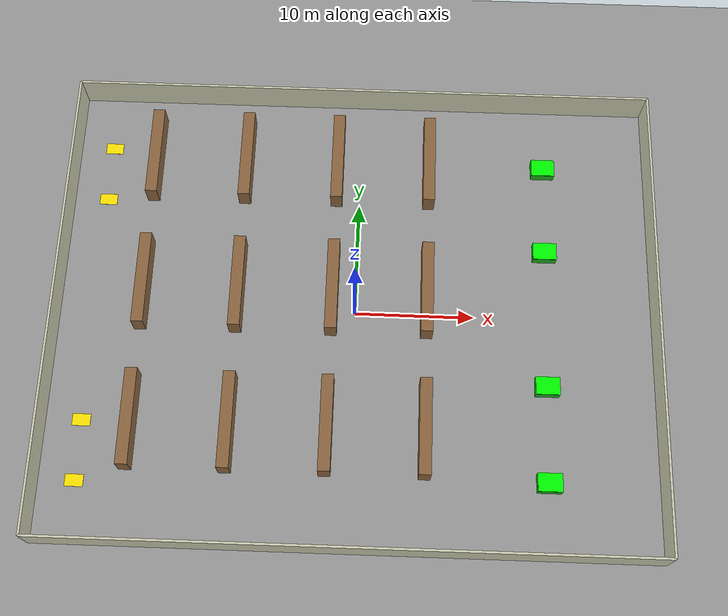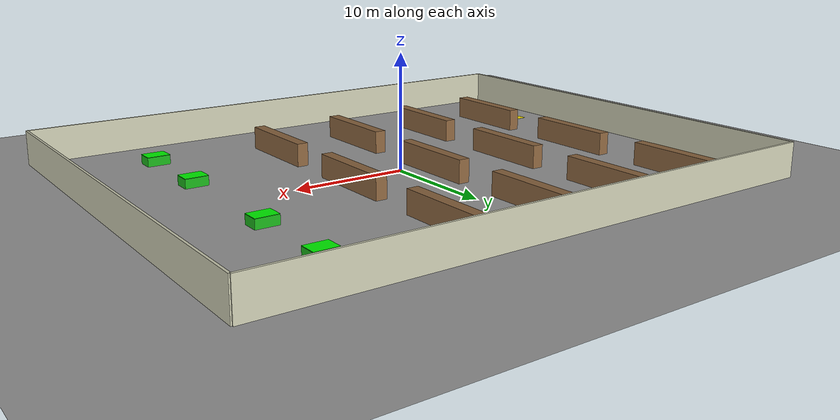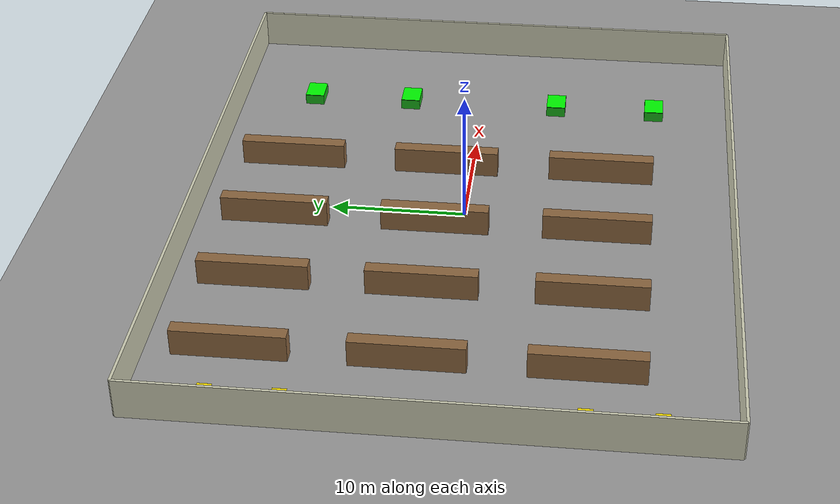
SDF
<?xml version="1.0" ?>
<sdf version="1.10">
  <world name="warehouse">

    <!-- Physics -->
    <physics name="4ms" type="ignored">
      <max_step_size>0.004</max_step_size>
      <real_time_factor>1.0</real_time_factor>
    </physics>

    <!-- Required plugins -->
    <plugin filename="gz-sim-physics-system" name="gz::sim::systems::Physics"/>
    <plugin filename="gz-sim-user-commands-system" name="gz::sim::systems::UserCommands"/>
    <plugin filename="gz-sim-scene-broadcaster-system" name="gz::sim::systems::SceneBroadcaster"/>
    <plugin filename="gz-sim-sensors-system" name="gz::sim::systems::Sensors">
      <render_engine>ogre2</render_engine>
    </plugin>
    <plugin filename="gz-sim-imu-system" name="gz::sim::systems::Imu"/>
    <plugin filename="gz-sim-contact-system" name="gz::sim::systems::Contact"/>

    <!-- Lighting -->
    <light name="sun" type="directional">
      <cast_shadows>true</cast_shadows>
      <pose>0 0 10 0 0 0</pose>
      <diffuse>0.8 0.8 0.8 1</diffuse>
      <specular>0.2 0.2 0.2 1</specular>
      <attenuation>
        <range>1000</range>
        <constant>0.9</constant>
        <linear>0.01</linear>
        <quadratic>0.001</quadratic>
      </attenuation>
      <direction>-0.5 0.1 -0.9</direction>
    </light>

    <!-- Ground plane -->
    <model name="ground_plane">
      <static>true</static>
      <link name="link">
        <collision name="collision">
          <geometry>
            <plane>
              <normal>0 0 1</normal>
              <size>50 40</size>
            </plane>
          </geometry>
        </collision>
        <visual name="visual">
          <geometry>
            <plane>
              <normal>0 0 1</normal>
              <size>50 40</size>
            </plane>
          </geometry>
          <material>
            <ambient>0.6 0.6 0.6 1</ambient>
            <diffuse>0.6 0.6 0.6 1</diffuse>
          </material>
        </visual>
      </link>
    </model>

    <!-- ===== WAREHOUSE OUTER WALLS ===== -->
    <!-- North wall -->
    <model name="wall_north">
      <static>true</static>
      <pose>0 20 1.5 0 0 0</pose>
      <link name="link">
        <collision name="collision">
          <geometry><box><size>50 0.2 3</size></box></geometry>
        </collision>
        <visual name="visual">
          <geometry><box><size>50 0.2 3</size></box></geometry>
          <material><ambient>0.8 0.8 0.7 1</ambient><diffuse>0.8 0.8 0.7 1</diffuse></material>
        </visual>
      </link>
    </model>

    <!-- South wall -->
    <model name="wall_south">
      <static>true</static>
      <pose>0 -20 1.5 0 0 0</pose>
      <link name="link">
        <collision name="collision">
          <geometry><box><size>50 0.2 3</size></box></geometry>
        </collision>
        <visual name="visual">
          <geometry><box><size>50 0.2 3</size></box></geometry>
          <material><ambient>0.8 0.8 0.7 1</ambient><diffuse>0.8 0.8 0.7 1</diffuse></material>
        </visual>
      </link>
    </model>

    <!-- East wall -->
    <model name="wall_east">
      <static>true</static>
      <pose>25 0 1.5 0 0 0</pose>
      <link name="link">
        <collision name="collision">
          <geometry><box><size>0.2 40 3</size></box></geometry>
        </collision>
        <visual name="visual">
          <geometry><box><size>0.2 40 3</size></box></geometry>
          <material><ambient>0.8 0.8 0.7 1</ambient><diffuse>0.8 0.8 0.7 1</diffuse></material>
        </visual>
      </link>
    </model>

    <!-- West wall -->
    <model name="wall_west">
      <static>true</static>
      <pose>-25 0 1.5 0 0 0</pose>
      <link name="link">
        <collision name="collision">
          <geometry><box><size>0.2 40 3</size></box></geometry>
        </collision>
        <visual name="visual">
          <geometry><box><size>0.2 40 3</size></box></geometry>
          <material><ambient>0.8 0.8 0.7 1</ambient><diffuse>0.8 0.8 0.7 1</diffuse></material>
        </visual>
      </link>
    </model>

    <!-- ===== SHELVING AISLES ===== -->
    <!-- Aisle A: x = -18, two rows of shelves, y = -15..15 -->
    <model name="shelf_A1">
      <static>true</static>
      <pose>-18 -10 1.0 0 0 0</pose>
      <link name="link">
        <collision name="collision">
          <geometry><box><size>1.0 8.0 2.0</size></box></geometry>
        </collision>
        <visual name="visual">
          <geometry><box><size>1.0 8.0 2.0</size></box></geometry>
          <material><ambient>0.4 0.3 0.2 1</ambient><diffuse>0.55 0.4 0.25 1</diffuse></material>
        </visual>
      </link>
    </model>

    <model name="shelf_A2">
      <static>true</static>
      <pose>-18 2 1.0 0 0 0</pose>
      <link name="link">
        <collision name="collision">
          <geometry><box><size>1.0 8.0 2.0</size></box></geometry>
        </collision>
        <visual name="visual">
          <geometry><box><size>1.0 8.0 2.0</size></box></geometry>
          <material><ambient>0.4 0.3 0.2 1</ambient><diffuse>0.55 0.4 0.25 1</diffuse></material>
        </visual>
      </link>
    </model>

    <model name="shelf_A3">
      <static>true</static>
      <pose>-18 14 1.0 0 0 0</pose>
      <link name="link">
        <collision name="collision">
          <geometry><box><size>1.0 8.0 2.0</size></box></geometry>
        </collision>
        <visual name="visual">
          <geometry><box><size>1.0 8.0 2.0</size></box></geometry>
          <material><ambient>0.4 0.3 0.2 1</ambient><diffuse>0.55 0.4 0.25 1</diffuse></material>
        </visual>
      </link>
    </model>

    <!-- Aisle B: x = -10 -->
    <model name="shelf_B1">
      <static>true</static>
      <pose>-10 -10 1.0 0 0 0</pose>
      <link name="link">
        <collision name="collision">
          <geometry><box><size>1.0 8.0 2.0</size></box></geometry>
        </collision>
        <visual name="visual">
          <geometry><box><size>1.0 8.0 2.0</size></box></geometry>
          <material><ambient>0.4 0.3 0.2 1</ambient><diffuse>0.55 0.4 0.25 1</diffuse></material>
        </visual>
      </link>
    </model>

    <model name="shelf_B2">
      <static>true</static>
      <pose>-10 2 1.0 0 0 0</pose>
      <link name="link">
        <collision name="collision">
          <geometry><box><size>1.0 8.0 2.0</size></box></geometry>
        </collision>
        <visual name="visual">
          <geometry><box><size>1.0 8.0 2.0</size></box></geometry>
          <material><ambient>0.4 0.3 0.2 1</ambient><diffuse>0.55 0.4 0.25 1</diffuse></material>
        </visual>
      </link>
    </model>

    <model name="shelf_B3">
      <static>true</static>
      <pose>-10 14 1.0 0 0 0</pose>
      <link name="link">
        <collision name="collision">
          <geometry><box><size>1.0 8.0 2.0</size></box></geometry>
        </collision>
        <visual name="visual">
          <geometry><box><size>1.0 8.0 2.0</size></box></geometry>
          <material><ambient>0.4 0.3 0.2 1</ambient><diffuse>0.55 0.4 0.25 1</diffuse></material>
        </visual>
      </link>
    </model>

    <!-- Aisle C: x = -2 -->
    <model name="shelf_C1">
      <static>true</static>
      <pose>-2 -10 1.0 0 0 0</pose>
      <link name="link">
        <collision name="collision">
          <geometry><box><size>1.0 8.0 2.0</size></box></geometry>
        </collision>
        <visual name="visual">
          <geometry><box><size>1.0 8.0 2.0</size></box></geometry>
          <material><ambient>0.4 0.3 0.2 1</ambient><diffuse>0.55 0.4 0.25 1</diffuse></material>
        </visual>
      </link>
    </model>

    <model name="shelf_C2">
      <static>true</static>
      <pose>-2 2 1.0 0 0 0</pose>
      <link name="link">
        <collision name="collision">
          <geometry><box><size>1.0 8.0 2.0</size></box></geometry>
        </collision>
        <visual name="visual">
          <geometry><box><size>1.0 8.0 2.0</size></box></geometry>
          <material><ambient>0.4 0.3 0.2 1</ambient><diffuse>0.55 0.4 0.25 1</diffuse></material>
        </visual>
      </link>
    </model>

    <model name="shelf_C3">
      <static>true</static>
      <pose>-2 14 1.0 0 0 0</pose>
      <link name="link">
        <collision name="collision">
          <geometry><box><size>1.0 8.0 2.0</size></box></geometry>
        </collision>
        <visual name="visual">
          <geometry><box><size>1.0 8.0 2.0</size></box></geometry>
          <material><ambient>0.4 0.3 0.2 1</ambient><diffuse>0.55 0.4 0.25 1</diffuse></material>
        </visual>
      </link>
    </model>

    <!-- Aisle D: x = 6 -->
    <model name="shelf_D1">
      <static>true</static>
      <pose>6 -10 1.0 0 0 0</pose>
      <link name="link">
        <collision name="collision">
          <geometry><box><size>1.0 8.0 2.0</size></box></geometry>
        </collision>
        <visual name="visual">
          <geometry><box><size>1.0 8.0 2.0</size></box></geometry>
          <material><ambient>0.4 0.3 0.2 1</ambient><diffuse>0.55 0.4 0.25 1</diffuse></material>
        </visual>
      </link>
    </model>

    <model name="shelf_D2">
      <static>true</static>
      <pose>6 2 1.0 0 0 0</pose>
      <link name="link">
        <collision name="collision">
          <geometry><box><size>1.0 8.0 2.0</size></box></geometry>
        </collision>
        <visual name="visual">
          <geometry><box><size>1.0 8.0 2.0</size></box></geometry>
          <material><ambient>0.4 0.3 0.2 1</ambient><diffuse>0.55 0.4 0.25 1</diffuse></material>
        </visual>
      </link>
    </model>

    <model name="shelf_D3">
      <static>true</static>
      <pose>6 14 1.0 0 0 0</pose>
      <link name="link">
        <collision name="collision">
          <geometry><box><size>1.0 8.0 2.0</size></box></geometry>
        </collision>
        <visual name="visual">
          <geometry><box><size>1.0 8.0 2.0</size></box></geometry>
          <material><ambient>0.4 0.3 0.2 1</ambient><diffuse>0.55 0.4 0.25 1</diffuse></material>
        </visual>
      </link>
    </model>

    <!-- ===== PICK STATIONS (east side, x=16) ===== -->
    <!-- Pick Station 1 -->
    <model name="pick_station_1">
      <static>true</static>
      <pose>16 14 0.4 0 0 0</pose>
      <link name="link">
        <collision name="collision">
          <geometry><box><size>2.0 1.5 0.8</size></box></geometry>
        </collision>
        <visual name="visual">
          <geometry><box><size>2.0 1.5 0.8</size></box></geometry>
          <material><ambient>0.1 0.6 0.1 1</ambient><diffuse>0.1 0.7 0.1 1</diffuse></material>
        </visual>
      </link>
    </model>
    <model name="pick_station_1_marker">
      <static>true</static>
      <pose>16 14 0.82 0 0 0</pose>
      <link name="link">
        <visual name="visual">
          <geometry><box><size>2.0 1.5 0.04</size></box></geometry>
          <material><ambient>0.0 1.0 0.0 1</ambient><diffuse>0.0 1.0 0.0 1</diffuse></material>
        </visual>
      </link>
    </model>

    <!-- Pick Station 2 -->
    <model name="pick_station_2">
      <static>true</static>
      <pose>16 6 0.4 0 0 0</pose>
      <link name="link">
        <collision name="collision">
          <geometry><box><size>2.0 1.5 0.8</size></box></geometry>
        </collision>
        <visual name="visual">
          <geometry><box><size>2.0 1.5 0.8</size></box></geometry>
          <material><ambient>0.1 0.6 0.1 1</ambient><diffuse>0.1 0.7 0.1 1</diffuse></material>
        </visual>
      </link>
    </model>
    <model name="pick_station_2_marker">
      <static>true</static>
      <pose>16 6 0.82 0 0 0</pose>
      <link name="link">
        <visual name="visual">
          <geometry><box><size>2.0 1.5 0.04</size></box></geometry>
          <material><ambient>0.0 1.0 0.0 1</ambient><diffuse>0.0 1.0 0.0 1</diffuse></material>
        </visual>
      </link>
    </model>

    <!-- Pick Station 3 -->
    <model name="pick_station_3">
      <static>true</static>
      <pose>16 -6 0.4 0 0 0</pose>
      <link name="link">
        <collision name="collision">
          <geometry><box><size>2.0 1.5 0.8</size></box></geometry>
        </collision>
        <visual name="visual">
          <geometry><box><size>2.0 1.5 0.8</size></box></geometry>
          <material><ambient>0.1 0.6 0.1 1</ambient><diffuse>0.1 0.7 0.1 1</diffuse></material>
        </visual>
      </link>
    </model>
    <model name="pick_station_3_marker">
      <static>true</static>
      <pose>16 -6 0.82 0 0 0</pose>
      <link name="link">
        <visual name="visual">
          <geometry><box><size>2.0 1.5 0.04</size></box></geometry>
          <material><ambient>0.0 1.0 0.0 1</ambient><diffuse>0.0 1.0 0.0 1</diffuse></material>
        </visual>
      </link>
    </model>

    <!-- Pick Station 4 -->
    <model name="pick_station_4">
      <static>true</static>
      <pose>16 -14 0.4 0 0 0</pose>
      <link name="link">
        <collision name="collision">
          <geometry><box><size>2.0 1.5 0.8</size></box></geometry>
        </collision>
        <visual name="visual">
          <geometry><box><size>2.0 1.5 0.8</size></box></geometry>
          <material><ambient>0.1 0.6 0.1 1</ambient><diffuse>0.1 0.7 0.1 1</diffuse></material>
        </visual>
      </link>
    </model>
    <model name="pick_station_4_marker">
      <static>true</static>
      <pose>16 -14 0.82 0 0 0</pose>
      <link name="link">
        <visual name="visual">
          <geometry><box><size>2.0 1.5 0.04</size></box></geometry>
          <material><ambient>0.0 1.0 0.0 1</ambient><diffuse>0.0 1.0 0.0 1</diffuse></material>
        </visual>
      </link>
    </model>

    <!-- ===== CHARGE DOCKS (west wall, x=-22) ===== -->
    <!-- Charge Dock 1 -->
    <model name="charge_dock_1">
      <static>true</static>
      <pose>-22 15 0.005 0 0 0</pose>
      <link name="link">
        <!-- No collision — charge pad is a floor marker; robots drive over it -->
        <visual name="visual">
          <geometry><box><size>1.5 1.0 0.01</size></box></geometry>
          <material><ambient>1.0 0.8 0.0 1</ambient><diffuse>1.0 0.9 0.0 1</diffuse></material>
        </visual>
      </link>
    </model>

    <!-- Charge Dock 2 -->
    <model name="charge_dock_2">
      <static>true</static>
      <pose>-22 10 0.005 0 0 0</pose>
      <link name="link">
        <!-- No collision — charge pad is a floor marker; robots drive over it -->
        <visual name="visual">
          <geometry><box><size>1.5 1.0 0.01</size></box></geometry>
          <material><ambient>1.0 0.8 0.0 1</ambient><diffuse>1.0 0.9 0.0 1</diffuse></material>
        </visual>
      </link>
    </model>

    <!-- Charge Dock 3 -->
    <model name="charge_dock_3">
      <static>true</static>
      <pose>-22 -10 0.005 0 0 0</pose>
      <link name="link">
        <!-- No collision — charge pad is a floor marker; robots drive over it -->
        <visual name="visual">
          <geometry><box><size>1.5 1.0 0.01</size></box></geometry>
          <material><ambient>1.0 0.8 0.0 1</ambient><diffuse>1.0 0.9 0.0 1</diffuse></material>
        </visual>
      </link>
    </model>

    <!-- Charge Dock 4 -->
    <model name="charge_dock_4">
      <static>true</static>
      <pose>-22 -15 0.005 0 0 0</pose>
      <link name="link">
        <!-- No collision — charge pad is a floor marker; robots drive over it -->
        <visual name="visual">
          <geometry><box><size>1.5 1.0 0.01</size></box></geometry>
          <material><ambient>1.0 0.8 0.0 1</ambient><diffuse>1.0 0.9 0.0 1</diffuse></material>
        </visual>
      </link>
    </model>

  </world>
</sdf>
